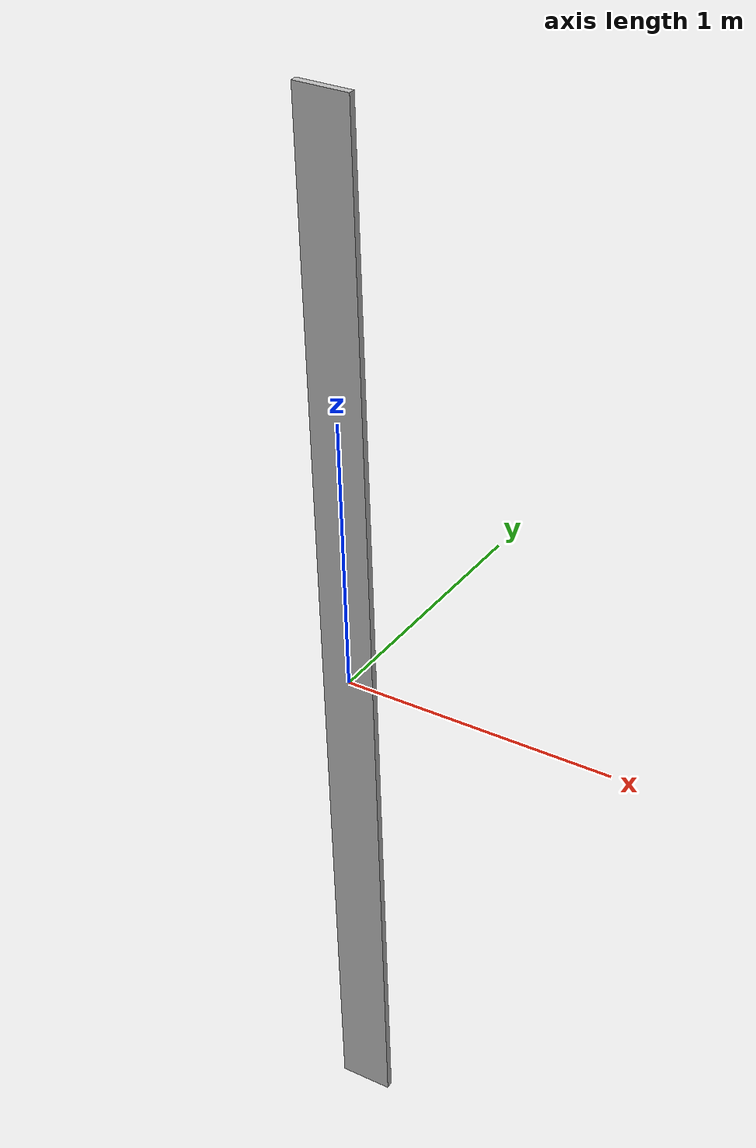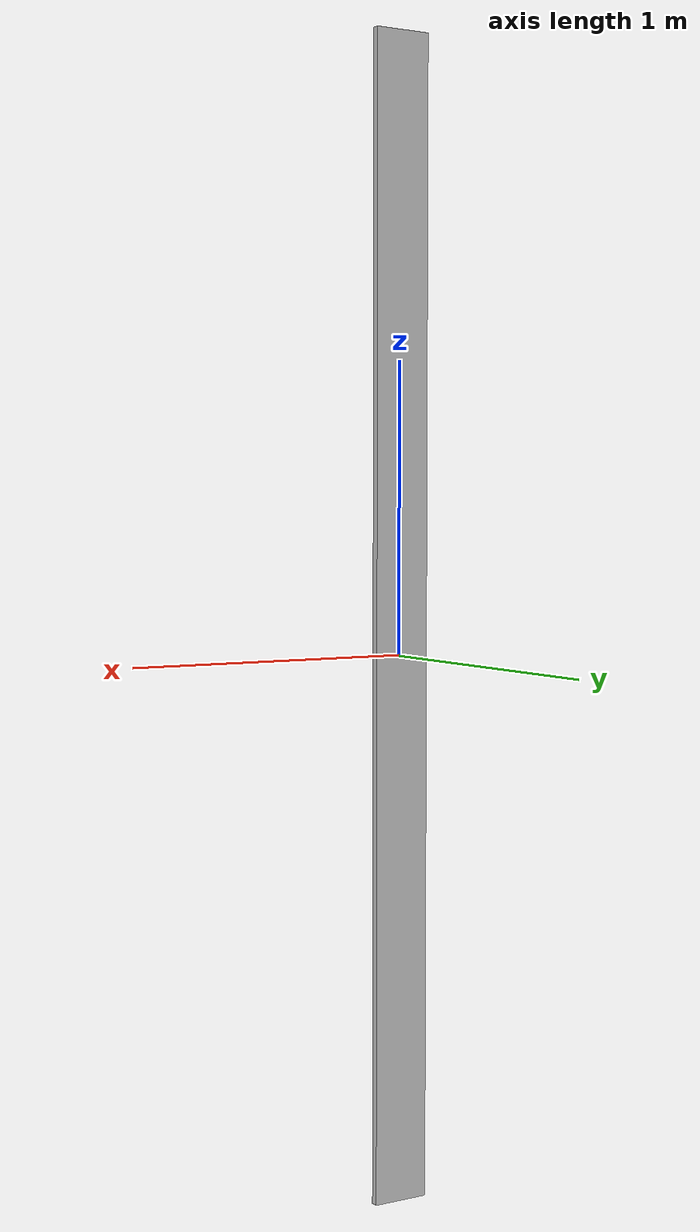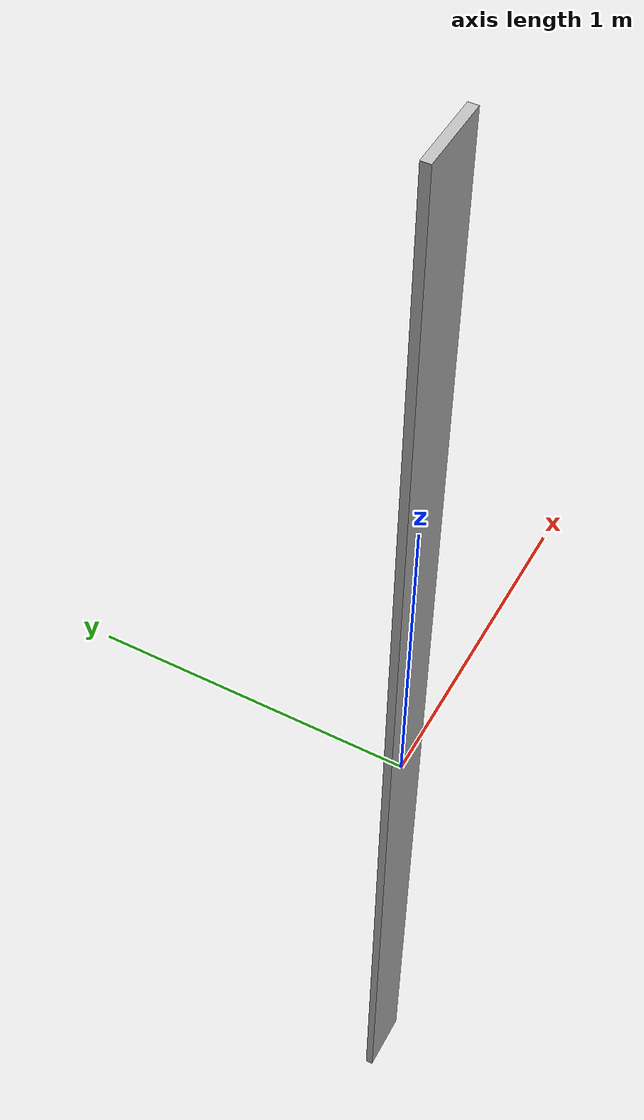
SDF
<?xml version="1.0" ?>
<sdf version="1.5">
  <model name="RonnyLM">
    <static>true</static>
    <link name="link">
      <pose>0 0 0.1 0 0 0</pose>
      <collision name="collision">
        <geometry>
          <box>
            <size>0.2 0.025 4.0</size>
          </box>
        </geometry>
      </collision>
      <visual name="visual">
        <cast_shadows>false</cast_shadows>
        <geometry>
          <box>
            <size>0.2 0.025 4.0</size>
          </box>
        </geometry>
        <material>
          <script>
            <uri>model://RonnyLM/materials/scripts</uri>
            <uri>model://RonnyLM/materials/textures</uri>
            <name>vrc/RonnyLM</name>
          </script>
        </material>
      </visual>
    </link>
  </model>
</sdf>
